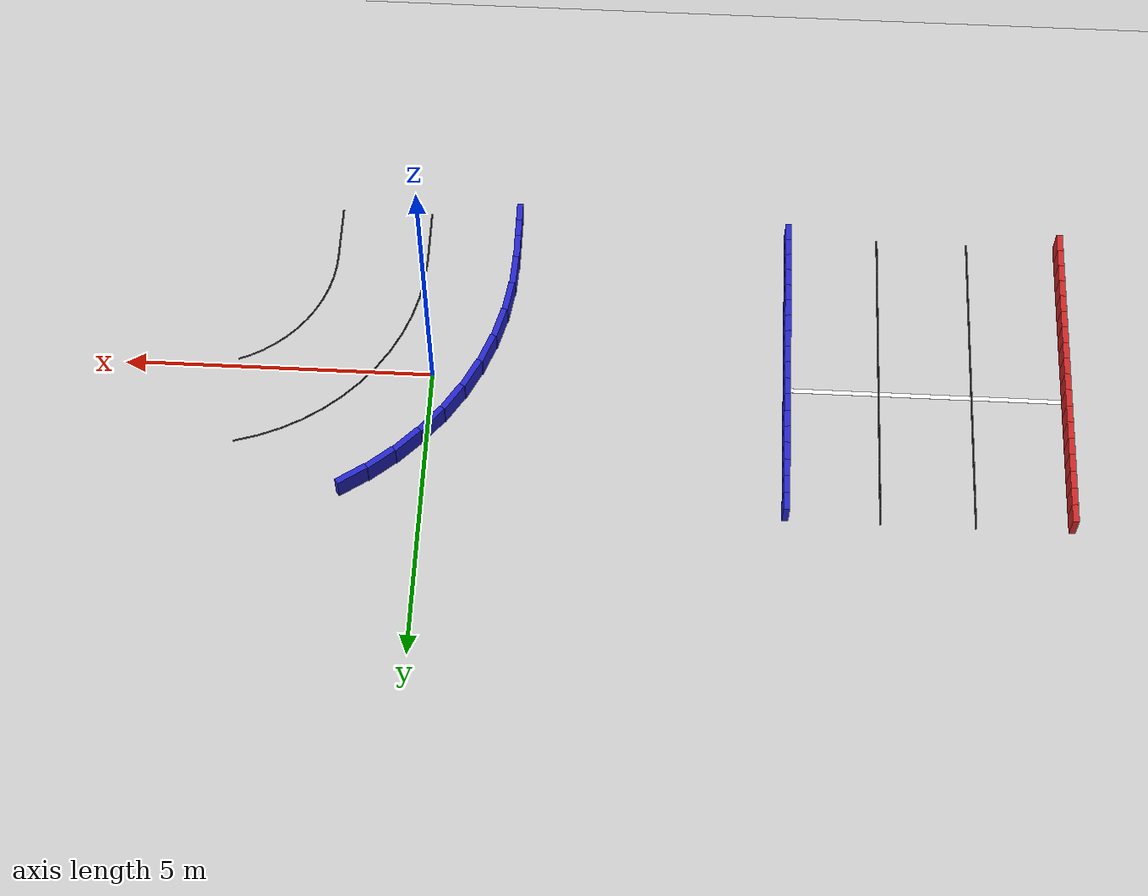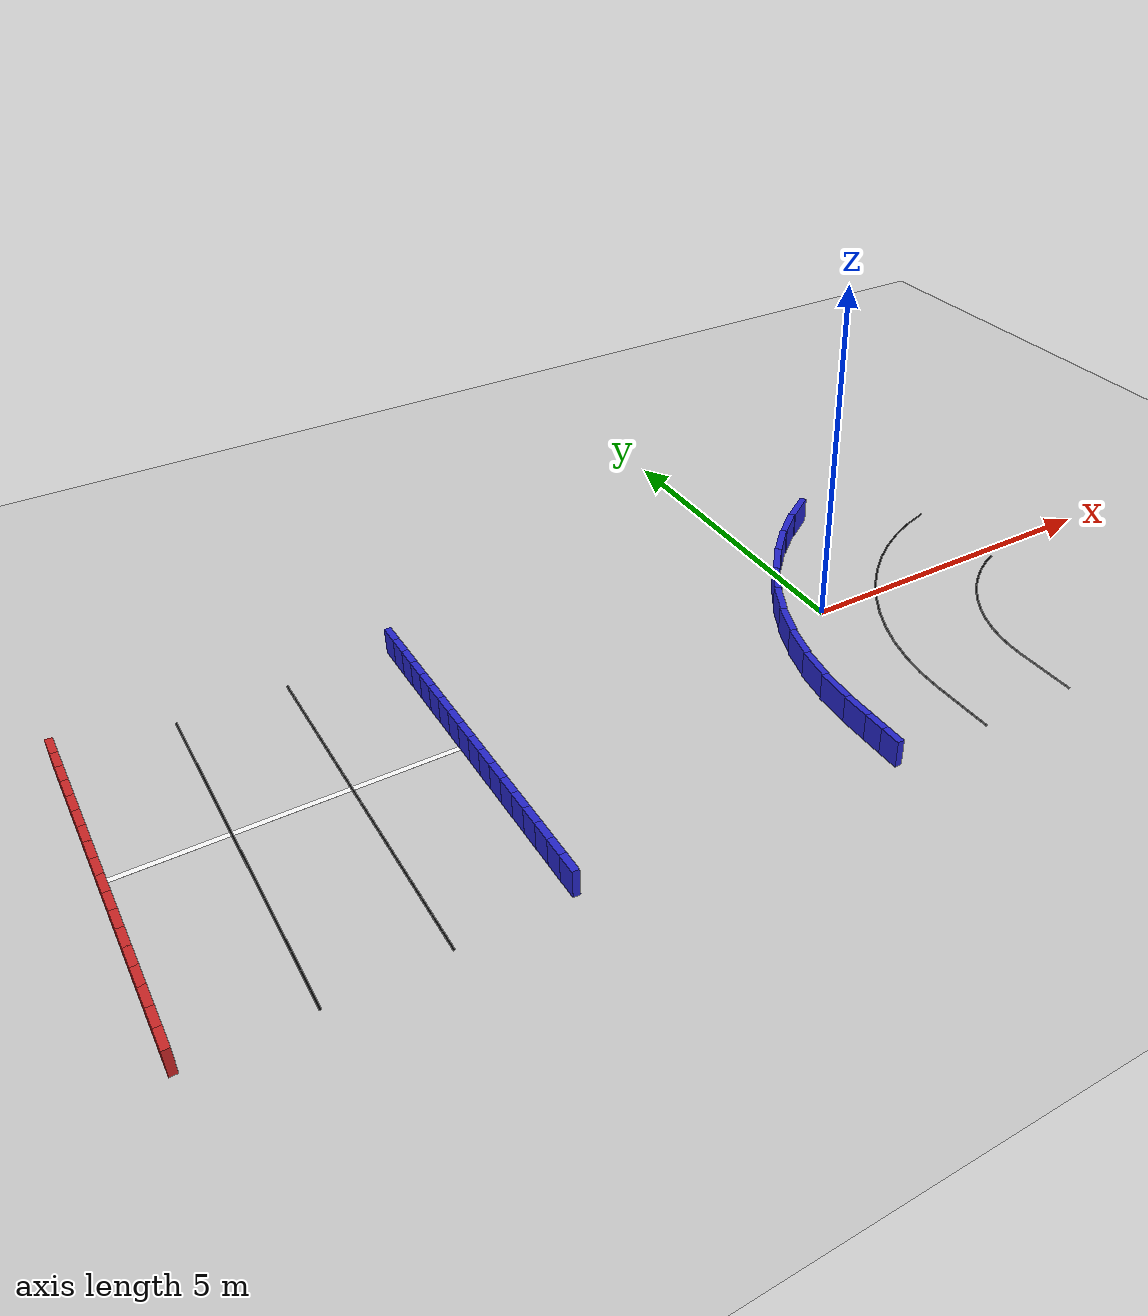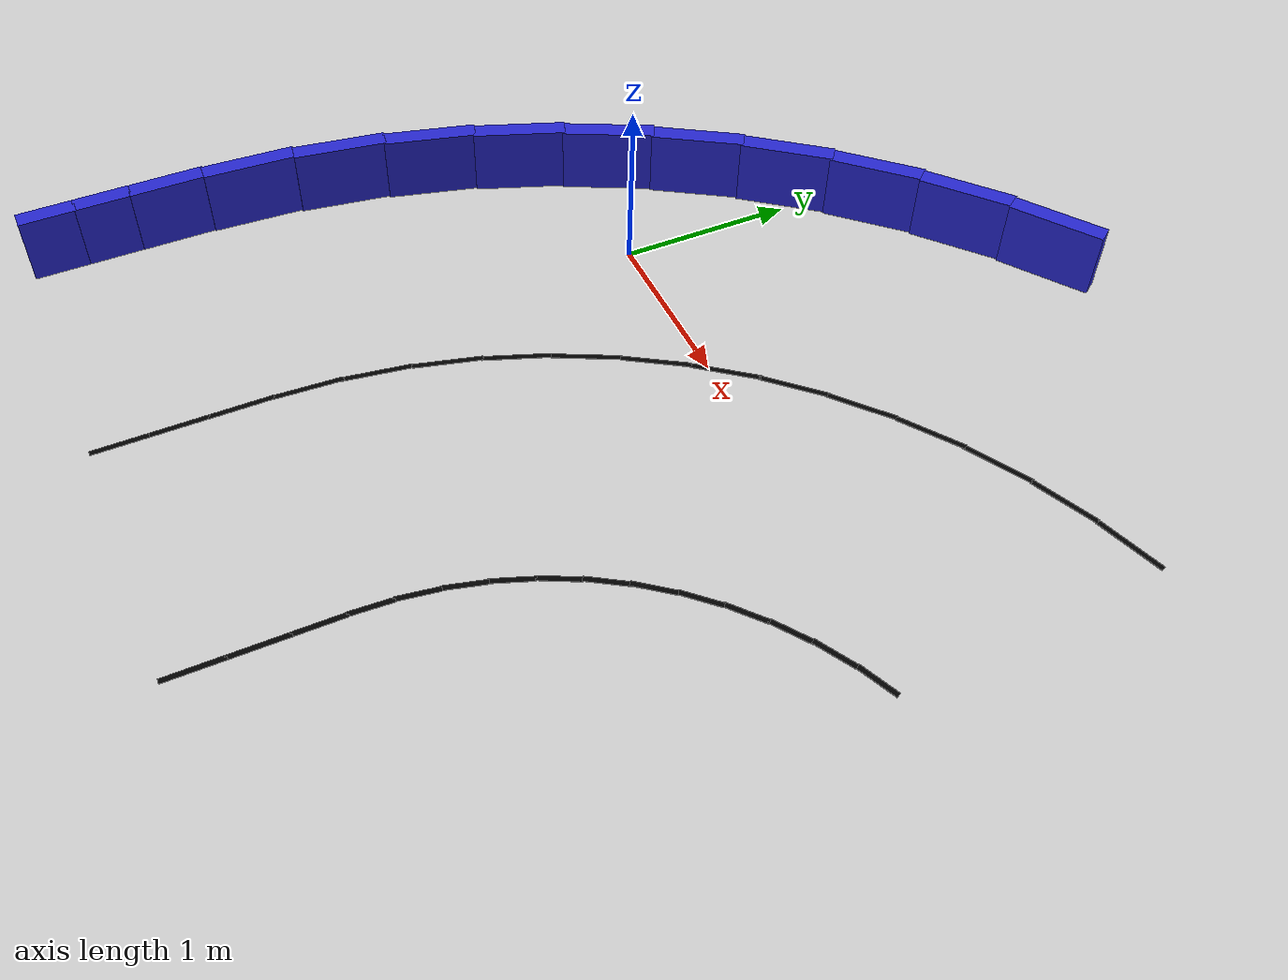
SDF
<sdf version="1.6">
 <world name="3lane_track">
  <include><uri>model://ground_plane</uri></include>
  <include><uri>model://sun</uri></include>
  <model name="iw_0">
   <static>true</static>
   <pose>-5.7500 -0.1500 0.200 0 0 -1.5708</pose>
   <link name="l">
    <collision name="c"><geometry><box><size>0.3100 0.1 0.4</size></box></geometry></collision>
    <visual name="v">
     <geometry><box><size>0.3100 0.1 0.4</size></box></geometry>
     <material><ambient>0.15 0.15 0.8 1</ambient><diffuse>0.15 0.15 0.8 1</diffuse></material>
    </visual>
   </link>
  </model>
  <model name="iw_1">
   <static>true</static>
   <pose>-5.7500 -0.4500 0.200 0 0 -1.5708</pose>
   <link name="l">
    <collision name="c"><geometry><box><size>0.3100 0.1 0.4</size></box></geometry></collision>
    <visual name="v">
     <geometry><box><size>0.3100 0.1 0.4</size></box></geometry>
     <material><ambient>0.15 0.15 0.8 1</ambient><diffuse>0.15 0.15 0.8 1</diffuse></material>
    </visual>
   </link>
  </model>
  <model name="iw_2">
   <static>true</static>
   <pose>-5.7500 -0.7500 0.200 0 0 -1.5708</pose>
   <link name="l">
    <collision name="c"><geometry><box><size>0.3100 0.1 0.4</size></box></geometry></collision>
    <visual name="v">
     <geometry><box><size>0.3100 0.1 0.4</size></box></geometry>
     <material><ambient>0.15 0.15 0.8 1</ambient><diffuse>0.15 0.15 0.8 1</diffuse></material>
    </visual>
   </link>
  </model>
  <model name="iw_3">
   <static>true</static>
   <pose>-5.7500 -1.0500 0.200 0 0 -1.5708</pose>
   <link name="l">
    <collision name="c"><geometry><box><size>0.3100 0.1 0.4</size></box></geometry></collision>
    <visual name="v">
     <geometry><box><size>0.3100 0.1 0.4</size></box></geometry>
     <material><ambient>0.15 0.15 0.8 1</ambient><diffuse>0.15 0.15 0.8 1</diffuse></material>
    </visual>
   </link>
  </model>
  <model name="iw_4">
   <static>true</static>
   <pose>-5.7500 -1.3500 0.200 0 0 -1.5708</pose>
   <link name="l">
    <collision name="c"><geometry><box><size>0.3100 0.1 0.4</size></box></geometry></collision>
    <visual name="v">
     <geometry><box><size>0.3100 0.1 0.4</size></box></geometry>
     <material><ambient>0.15 0.15 0.8 1</ambient><diffuse>0.15 0.15 0.8 1</diffuse></material>
    </visual>
   </link>
  </model>
  <model name="iw_5">
   <static>true</static>
   <pose>-5.7500 -1.6500 0.200 0 0 -1.5708</pose>
   <link name="l">
    <collision name="c"><geometry><box><size>0.3100 0.1 0.4</size></box></geometry></collision>
    <visual name="v">
     <geometry><box><size>0.3100 0.1 0.4</size></box></geometry>
     <material><ambient>0.15 0.15 0.8 1</ambient><diffuse>0.15 0.15 0.8 1</diffuse></material>
    </visual>
   </link>
  </model>
  <model name="iw_6">
   <static>true</static>
   <pose>-5.7500 -1.9500 0.200 0 0 -1.5708</pose>
   <link name="l">
    <collision name="c"><geometry><box><size>0.3100 0.1 0.4</size></box></geometry></collision>
    <visual name="v">
     <geometry><box><size>0.3100 0.1 0.4</size></box></geometry>
     <material><ambient>0.15 0.15 0.8 1</ambient><diffuse>0.15 0.15 0.8 1</diffuse></material>
    </visual>
   </link>
  </model>
  <model name="iw_7">
   <static>true</static>
   <pose>-5.7500 -2.2500 0.200 0 0 -1.5708</pose>
   <link name="l">
    <collision name="c"><geometry><box><size>0.3100 0.1 0.4</size></box></geometry></collision>
    <visual name="v">
     <geometry><box><size>0.3100 0.1 0.4</size></box></geometry>
     <material><ambient>0.15 0.15 0.8 1</ambient><diffuse>0.15 0.15 0.8 1</diffuse></material>
    </visual>
   </link>
  </model>
  <model name="iw_8">
   <static>true</static>
   <pose>-5.7500 -2.5500 0.200 0 0 -1.5708</pose>
   <link name="l">
    <collision name="c"><geometry><box><size>0.3100 0.1 0.4</size></box></geometry></collision>
    <visual name="v">
     <geometry><box><size>0.3100 0.1 0.4</size></box></geometry>
     <material><ambient>0.15 0.15 0.8 1</ambient><diffuse>0.15 0.15 0.8 1</diffuse></material>
    </visual>
   </link>
  </model>
  <model name="iw_9">
   <static>true</static>
   <pose>-5.7500 -2.8500 0.200 0 0 -1.5708</pose>
   <link name="l">
    <collision name="c"><geometry><box><size>0.3100 0.1 0.4</size></box></geometry></collision>
    <visual name="v">
     <geometry><box><size>0.3100 0.1 0.4</size></box></geometry>
     <material><ambient>0.15 0.15 0.8 1</ambient><diffuse>0.15 0.15 0.8 1</diffuse></material>
    </visual>
   </link>
  </model>
  <model name="iw_71">
   <static>true</static>
   <pose>-1.2500 -3.0312 0.200 0 0 1.5708</pose>
   <link name="l">
    <collision name="c"><geometry><box><size>0.3225 0.1 0.4</size></box></geometry></collision>
    <visual name="v">
     <geometry><box><size>0.3225 0.1 0.4</size></box></geometry>
     <material><ambient>0.15 0.15 0.8 1</ambient><diffuse>0.15 0.15 0.8 1</diffuse></material>
    </visual>
   </link>
  </model>
  <model name="iw_72">
   <static>true</static>
   <pose>-1.2500 -2.7187 0.200 0 0 1.5708</pose>
   <link name="l">
    <collision name="c"><geometry><box><size>0.3225 0.1 0.4</size></box></geometry></collision>
    <visual name="v">
     <geometry><box><size>0.3225 0.1 0.4</size></box></geometry>
     <material><ambient>0.15 0.15 0.8 1</ambient><diffuse>0.15 0.15 0.8 1</diffuse></material>
    </visual>
   </link>
  </model>
  <model name="iw_73">
   <static>true</static>
   <pose>-1.2486 -2.3493 0.200 0 0 1.5708</pose>
   <link name="l">
    <collision name="c"><geometry><box><size>0.4365 0.1 0.4</size></box></geometry></collision>
    <visual name="v">
     <geometry><box><size>0.4365 0.1 0.4</size></box></geometry>
     <material><ambient>0.15 0.15 0.8 1</ambient><diffuse>0.15 0.15 0.8 1</diffuse></material>
    </visual>
   </link>
  </model>
  <model name="iw_74">
   <static>true</static>
   <pose>-1.2279 -1.8709 0.200 0 0 1.5201</pose>
   <link name="l">
    <collision name="c"><geometry><box><size>0.5416 0.1 0.4</size></box></geometry></collision>
    <visual name="v">
     <geometry><box><size>0.5416 0.1 0.4</size></box></geometry>
     <material><ambient>0.15 0.15 0.8 1</ambient><diffuse>0.15 0.15 0.8 1</diffuse></material>
    </visual>
   </link>
  </model>
  <model name="iw_75">
   <static>true</static>
   <pose>-1.1627 -1.3440 0.200 0 0 1.4188</pose>
   <link name="l">
    <collision name="c"><geometry><box><size>0.5416 0.1 0.4</size></box></geometry></collision>
    <visual name="v">
     <geometry><box><size>0.5416 0.1 0.4</size></box></geometry>
     <material><ambient>0.15 0.15 0.8 1</ambient><diffuse>0.15 0.15 0.8 1</diffuse></material>
    </visual>
   </link>
  </model>
  <model name="iw_76">
   <static>true</static>
   <pose>-1.0446 -0.8263 0.200 0 0 1.3174</pose>
   <link name="l">
    <collision name="c"><geometry><box><size>0.5416 0.1 0.4</size></box></geometry></collision>
    <visual name="v">
     <geometry><box><size>0.5416 0.1 0.4</size></box></geometry>
     <material><ambient>0.15 0.15 0.8 1</ambient><diffuse>0.15 0.15 0.8 1</diffuse></material>
    </visual>
   </link>
  </model>
  <model name="iw_77">
   <static>true</static>
   <pose>-0.8746 -0.3233 0.200 0 0 1.2161</pose>
   <link name="l">
    <collision name="c"><geometry><box><size>0.5416 0.1 0.4</size></box></geometry></collision>
    <visual name="v">
     <geometry><box><size>0.5416 0.1 0.4</size></box></geometry>
     <material><ambient>0.15 0.15 0.8 1</ambient><diffuse>0.15 0.15 0.8 1</diffuse></material>
    </visual>
   </link>
  </model>
  <model name="iw_78">
   <static>true</static>
   <pose>-0.6547 0.1600 0.200 0 0 1.1148</pose>
   <link name="l">
    <collision name="c"><geometry><box><size>0.5416 0.1 0.4</size></box></geometry></collision>
    <visual name="v">
     <geometry><box><size>0.5416 0.1 0.4</size></box></geometry>
     <material><ambient>0.15 0.15 0.8 1</ambient><diffuse>0.15 0.15 0.8 1</diffuse></material>
    </visual>
   </link>
  </model>
  <model name="iw_79">
   <static>true</static>
   <pose>-0.3870 0.6186 0.200 0 0 1.0134</pose>
   <link name="l">
    <collision name="c"><geometry><box><size>0.5416 0.1 0.4</size></box></geometry></collision>
    <visual name="v">
     <geometry><box><size>0.5416 0.1 0.4</size></box></geometry>
     <material><ambient>0.15 0.15 0.8 1</ambient><diffuse>0.15 0.15 0.8 1</diffuse></material>
    </visual>
   </link>
  </model>
  <model name="iw_80">
   <static>true</static>
   <pose>-0.0743 1.0477 0.200 0 0 0.9121</pose>
   <link name="l">
    <collision name="c"><geometry><box><size>0.5416 0.1 0.4</size></box></geometry></collision>
    <visual name="v">
     <geometry><box><size>0.5416 0.1 0.4</size></box></geometry>
     <material><ambient>0.15 0.15 0.8 1</ambient><diffuse>0.15 0.15 0.8 1</diffuse></material>
    </visual>
   </link>
  </model>
  <model name="iw_81">
   <static>true</static>
   <pose>0.2802 1.4429 0.200 0 0 0.8107</pose>
   <link name="l">
    <collision name="c"><geometry><box><size>0.5416 0.1 0.4</size></box></geometry></collision>
    <visual name="v">
     <geometry><box><size>0.5416 0.1 0.4</size></box></geometry>
     <material><ambient>0.15 0.15 0.8 1</ambient><diffuse>0.15 0.15 0.8 1</diffuse></material>
    </visual>
   </link>
  </model>
  <model name="iw_82">
   <static>true</static>
   <pose>0.6729 1.8003 0.200 0 0 0.7094</pose>
   <link name="l">
    <collision name="c"><geometry><box><size>0.5416 0.1 0.4</size></box></geometry></collision>
    <visual name="v">
     <geometry><box><size>0.5416 0.1 0.4</size></box></geometry>
     <material><ambient>0.15 0.15 0.8 1</ambient><diffuse>0.15 0.15 0.8 1</diffuse></material>
    </visual>
   </link>
  </model>
  <model name="iw_83">
   <static>true</static>
   <pose>1.0998 2.1161 0.200 0 0 0.6081</pose>
   <link name="l">
    <collision name="c"><geometry><box><size>0.5416 0.1 0.4</size></box></geometry></collision>
    <visual name="v">
     <geometry><box><size>0.5416 0.1 0.4</size></box></geometry>
     <material><ambient>0.15 0.15 0.8 1</ambient><diffuse>0.15 0.15 0.8 1</diffuse></material>
    </visual>
   </link>
  </model>
  <model name="iw_308">
   <static>true</static>
   <pose>-5.7500 2.2500 0.200 0 0 -1.5708</pose>
   <link name="l">
    <collision name="c"><geometry><box><size>0.3100 0.1 0.4</size></box></geometry></collision>
    <visual name="v">
     <geometry><box><size>0.3100 0.1 0.4</size></box></geometry>
     <material><ambient>0.15 0.15 0.8 1</ambient><diffuse>0.15 0.15 0.8 1</diffuse></material>
    </visual>
   </link>
  </model>
  <model name="iw_309">
   <static>true</static>
   <pose>-5.7500 1.9500 0.200 0 0 -1.5708</pose>
   <link name="l">
    <collision name="c"><geometry><box><size>0.3100 0.1 0.4</size></box></geometry></collision>
    <visual name="v">
     <geometry><box><size>0.3100 0.1 0.4</size></box></geometry>
     <material><ambient>0.15 0.15 0.8 1</ambient><diffuse>0.15 0.15 0.8 1</diffuse></material>
    </visual>
   </link>
  </model>
  <model name="iw_310">
   <static>true</static>
   <pose>-5.7500 1.6500 0.200 0 0 -1.5708</pose>
   <link name="l">
    <collision name="c"><geometry><box><size>0.3100 0.1 0.4</size></box></geometry></collision>
    <visual name="v">
     <geometry><box><size>0.3100 0.1 0.4</size></box></geometry>
     <material><ambient>0.15 0.15 0.8 1</ambient><diffuse>0.15 0.15 0.8 1</diffuse></material>
    </visual>
   </link>
  </model>
  <model name="iw_311">
   <static>true</static>
   <pose>-5.7500 1.3500 0.200 0 0 -1.5708</pose>
   <link name="l">
    <collision name="c"><geometry><box><size>0.3100 0.1 0.4</size></box></geometry></collision>
    <visual name="v">
     <geometry><box><size>0.3100 0.1 0.4</size></box></geometry>
     <material><ambient>0.15 0.15 0.8 1</ambient><diffuse>0.15 0.15 0.8 1</diffuse></material>
    </visual>
   </link>
  </model>
  <model name="iw_312">
   <static>true</static>
   <pose>-5.7500 1.0500 0.200 0 0 -1.5708</pose>
   <link name="l">
    <collision name="c"><geometry><box><size>0.3100 0.1 0.4</size></box></geometry></collision>
    <visual name="v">
     <geometry><box><size>0.3100 0.1 0.4</size></box></geometry>
     <material><ambient>0.15 0.15 0.8 1</ambient><diffuse>0.15 0.15 0.8 1</diffuse></material>
    </visual>
   </link>
  </model>
  <model name="iw_313">
   <static>true</static>
   <pose>-5.7500 0.7500 0.200 0 0 -1.5708</pose>
   <link name="l">
    <collision name="c"><geometry><box><size>0.3100 0.1 0.4</size></box></geometry></collision>
    <visual name="v">
     <geometry><box><size>0.3100 0.1 0.4</size></box></geometry>
     <material><ambient>0.15 0.15 0.8 1</ambient><diffuse>0.15 0.15 0.8 1</diffuse></material>
    </visual>
   </link>
  </model>
  <model name="iw_314">
   <static>true</static>
   <pose>-5.7500 0.4500 0.200 0 0 -1.5708</pose>
   <link name="l">
    <collision name="c"><geometry><box><size>0.3100 0.1 0.4</size></box></geometry></collision>
    <visual name="v">
     <geometry><box><size>0.3100 0.1 0.4</size></box></geometry>
     <material><ambient>0.15 0.15 0.8 1</ambient><diffuse>0.15 0.15 0.8 1</diffuse></material>
    </visual>
   </link>
  </model>
  <model name="iw_315">
   <static>true</static>
   <pose>-5.7500 0.1500 0.200 0 0 -1.5708</pose>
   <link name="l">
    <collision name="c"><geometry><box><size>0.3100 0.1 0.4</size></box></geometry></collision>
    <visual name="v">
     <geometry><box><size>0.3100 0.1 0.4</size></box></geometry>
     <material><ambient>0.15 0.15 0.8 1</ambient><diffuse>0.15 0.15 0.8 1</diffuse></material>
    </visual>
   </link>
  </model>
  <model name="ow_0">
   <static>true</static>
   <pose>-10.2500 -0.1500 0.200 0 0 -1.5708</pose>
   <link name="l">
    <collision name="c"><geometry><box><size>0.3100 0.1 0.4</size></box></geometry></collision>
    <visual name="v">
     <geometry><box><size>0.3100 0.1 0.4</size></box></geometry>
     <material><ambient>0.8 0.15 0.15 1</ambient><diffuse>0.8 0.15 0.15 1</diffuse></material>
    </visual>
   </link>
  </model>
  <model name="ow_1">
   <static>true</static>
   <pose>-10.2500 -0.4500 0.200 0 0 -1.5708</pose>
   <link name="l">
    <collision name="c"><geometry><box><size>0.3100 0.1 0.4</size></box></geometry></collision>
    <visual name="v">
     <geometry><box><size>0.3100 0.1 0.4</size></box></geometry>
     <material><ambient>0.8 0.15 0.15 1</ambient><diffuse>0.8 0.15 0.15 1</diffuse></material>
    </visual>
   </link>
  </model>
  <model name="ow_2">
   <static>true</static>
   <pose>-10.2500 -0.7500 0.200 0 0 -1.5708</pose>
   <link name="l">
    <collision name="c"><geometry><box><size>0.3100 0.1 0.4</size></box></geometry></collision>
    <visual name="v">
     <geometry><box><size>0.3100 0.1 0.4</size></box></geometry>
     <material><ambient>0.8 0.15 0.15 1</ambient><diffuse>0.8 0.15 0.15 1</diffuse></material>
    </visual>
   </link>
  </model>
  <model name="ow_3">
   <static>true</static>
   <pose>-10.2500 -1.0500 0.200 0 0 -1.5708</pose>
   <link name="l">
    <collision name="c"><geometry><box><size>0.3100 0.1 0.4</size></box></geometry></collision>
    <visual name="v">
     <geometry><box><size>0.3100 0.1 0.4</size></box></geometry>
     <material><ambient>0.8 0.15 0.15 1</ambient><diffuse>0.8 0.15 0.15 1</diffuse></material>
    </visual>
   </link>
  </model>
  <model name="ow_4">
   <static>true</static>
   <pose>-10.2500 -1.3500 0.200 0 0 -1.5708</pose>
   <link name="l">
    <collision name="c"><geometry><box><size>0.3100 0.1 0.4</size></box></geometry></collision>
    <visual name="v">
     <geometry><box><size>0.3100 0.1 0.4</size></box></geometry>
     <material><ambient>0.8 0.15 0.15 1</ambient><diffuse>0.8 0.15 0.15 1</diffuse></material>
    </visual>
   </link>
  </model>
  <model name="ow_5">
   <static>true</static>
   <pose>-10.2500 -1.6500 0.200 0 0 -1.5708</pose>
   <link name="l">
    <collision name="c"><geometry><box><size>0.3100 0.1 0.4</size></box></geometry></collision>
    <visual name="v">
     <geometry><box><size>0.3100 0.1 0.4</size></box></geometry>
     <material><ambient>0.8 0.15 0.15 1</ambient><diffuse>0.8 0.15 0.15 1</diffuse></material>
    </visual>
   </link>
  </model>
  <model name="ow_6">
   <static>true</static>
   <pose>-10.2500 -1.9500 0.200 0 0 -1.5708</pose>
   <link name="l">
    <collision name="c"><geometry><box><size>0.3100 0.1 0.4</size></box></geometry></collision>
    <visual name="v">
     <geometry><box><size>0.3100 0.1 0.4</size></box></geometry>
     <material><ambient>0.8 0.15 0.15 1</ambient><diffuse>0.8 0.15 0.15 1</diffuse></material>
    </visual>
   </link>
  </model>
  <model name="ow_7">
   <static>true</static>
   <pose>-10.2500 -2.2500 0.200 0 0 -1.5708</pose>
   <link name="l">
    <collision name="c"><geometry><box><size>0.3100 0.1 0.4</size></box></geometry></collision>
    <visual name="v">
     <geometry><box><size>0.3100 0.1 0.4</size></box></geometry>
     <material><ambient>0.8 0.15 0.15 1</ambient><diffuse>0.8 0.15 0.15 1</diffuse></material>
    </visual>
   </link>
  </model>
  <model name="ow_8">
   <static>true</static>
   <pose>-10.2500 -2.5500 0.200 0 0 -1.5708</pose>
   <link name="l">
    <collision name="c"><geometry><box><size>0.3100 0.1 0.4</size></box></geometry></collision>
    <visual name="v">
     <geometry><box><size>0.3100 0.1 0.4</size></box></geometry>
     <material><ambient>0.8 0.15 0.15 1</ambient><diffuse>0.8 0.15 0.15 1</diffuse></material>
    </visual>
   </link>
  </model>
  <model name="ow_9">
   <static>true</static>
   <pose>-10.2500 -2.8500 0.200 0 0 -1.5708</pose>
   <link name="l">
    <collision name="c"><geometry><box><size>0.3100 0.1 0.4</size></box></geometry></collision>
    <visual name="v">
     <geometry><box><size>0.3100 0.1 0.4</size></box></geometry>
     <material><ambient>0.8 0.15 0.15 1</ambient><diffuse>0.8 0.15 0.15 1</diffuse></material>
    </visual>
   </link>
  </model>
  <model name="ow_308">
   <static>true</static>
   <pose>-10.2500 2.2500 0.200 0 0 -1.5708</pose>
   <link name="l">
    <collision name="c"><geometry><box><size>0.3100 0.1 0.4</size></box></geometry></collision>
    <visual name="v">
     <geometry><box><size>0.3100 0.1 0.4</size></box></geometry>
     <material><ambient>0.8 0.15 0.15 1</ambient><diffuse>0.8 0.15 0.15 1</diffuse></material>
    </visual>
   </link>
  </model>
  <model name="ow_309">
   <static>true</static>
   <pose>-10.2500 1.9500 0.200 0 0 -1.5708</pose>
   <link name="l">
    <collision name="c"><geometry><box><size>0.3100 0.1 0.4</size></box></geometry></collision>
    <visual name="v">
     <geometry><box><size>0.3100 0.1 0.4</size></box></geometry>
     <material><ambient>0.8 0.15 0.15 1</ambient><diffuse>0.8 0.15 0.15 1</diffuse></material>
    </visual>
   </link>
  </model>
  <model name="ow_310">
   <static>true</static>
   <pose>-10.2500 1.6500 0.200 0 0 -1.5708</pose>
   <link name="l">
    <collision name="c"><geometry><box><size>0.3100 0.1 0.4</size></box></geometry></collision>
    <visual name="v">
     <geometry><box><size>0.3100 0.1 0.4</size></box></geometry>
     <material><ambient>0.8 0.15 0.15 1</ambient><diffuse>0.8 0.15 0.15 1</diffuse></material>
    </visual>
   </link>
  </model>
  <model name="ow_311">
   <static>true</static>
   <pose>-10.2500 1.3500 0.200 0 0 -1.5708</pose>
   <link name="l">
    <collision name="c"><geometry><box><size>0.3100 0.1 0.4</size></box></geometry></collision>
    <visual name="v">
     <geometry><box><size>0.3100 0.1 0.4</size></box></geometry>
     <material><ambient>0.8 0.15 0.15 1</ambient><diffuse>0.8 0.15 0.15 1</diffuse></material>
    </visual>
   </link>
  </model>
  <model name="ow_312">
   <static>true</static>
   <pose>-10.2500 1.0500 0.200 0 0 -1.5708</pose>
   <link name="l">
    <collision name="c"><geometry><box><size>0.3100 0.1 0.4</size></box></geometry></collision>
    <visual name="v">
     <geometry><box><size>0.3100 0.1 0.4</size></box></geometry>
     <material><ambient>0.8 0.15 0.15 1</ambient><diffuse>0.8 0.15 0.15 1</diffuse></material>
    </visual>
   </link>
  </model>
  <model name="ow_313">
   <static>true</static>
   <pose>-10.2500 0.7500 0.200 0 0 -1.5708</pose>
   <link name="l">
    <collision name="c"><geometry><box><size>0.3100 0.1 0.4</size></box></geometry></collision>
    <visual name="v">
     <geometry><box><size>0.3100 0.1 0.4</size></box></geometry>
     <material><ambient>0.8 0.15 0.15 1</ambient><diffuse>0.8 0.15 0.15 1</diffuse></material>
    </visual>
   </link>
  </model>
  <model name="ow_314">
   <static>true</static>
   <pose>-10.2500 0.4500 0.200 0 0 -1.5708</pose>
   <link name="l">
    <collision name="c"><geometry><box><size>0.3100 0.1 0.4</size></box></geometry></collision>
    <visual name="v">
     <geometry><box><size>0.3100 0.1 0.4</size></box></geometry>
     <material><ambient>0.8 0.15 0.15 1</ambient><diffuse>0.8 0.15 0.15 1</diffuse></material>
    </visual>
   </link>
  </model>
  <model name="ow_315">
   <static>true</static>
   <pose>-10.2500 0.1500 0.200 0 0 -1.5708</pose>
   <link name="l">
    <collision name="c"><geometry><box><size>0.3100 0.1 0.4</size></box></geometry></collision>
    <visual name="v">
     <geometry><box><size>0.3100 0.1 0.4</size></box></geometry>
     <material><ambient>0.8 0.15 0.15 1</ambient><diffuse>0.8 0.15 0.15 1</diffuse></material>
    </visual>
   </link>
  </model>
  <model name="line_0">
   <static>true</static>
   <pose>-7.2500 -0.1500 0.002 0 0 -1.5708</pose>
   <link name="l">
    <visual name="v">
     <geometry><box><size>0.3100 0.03 0.002</size></box></geometry>
     <material><ambient>0 0 0 1</ambient><diffuse>0 0 0 1</diffuse></material>
    </visual>
   </link>
  </model>
  <model name="line_1">
   <static>true</static>
   <pose>-8.7500 -0.1500 0.002 0 0 -1.5708</pose>
   <link name="l">
    <visual name="v">
     <geometry><box><size>0.3100 0.03 0.002</size></box></geometry>
     <material><ambient>0 0 0 1</ambient><diffuse>0 0 0 1</diffuse></material>
    </visual>
   </link>
  </model>
  <model name="line_2">
   <static>true</static>
   <pose>-7.2500 -0.4500 0.002 0 0 -1.5708</pose>
   <link name="l">
    <visual name="v">
     <geometry><box><size>0.3100 0.03 0.002</size></box></geometry>
     <material><ambient>0 0 0 1</ambient><diffuse>0 0 0 1</diffuse></material>
    </visual>
   </link>
  </model>
  <model name="line_3">
   <static>true</static>
   <pose>-8.7500 -0.4500 0.002 0 0 -1.5708</pose>
   <link name="l">
    <visual name="v">
     <geometry><box><size>0.3100 0.03 0.002</size></box></geometry>
     <material><ambient>0 0 0 1</ambient><diffuse>0 0 0 1</diffuse></material>
    </visual>
   </link>
  </model>
  <model name="line_4">
   <static>true</static>
   <pose>-7.2500 -0.7500 0.002 0 0 -1.5708</pose>
   <link name="l">
    <visual name="v">
     <geometry><box><size>0.3100 0.03 0.002</size></box></geometry>
     <material><ambient>0 0 0 1</ambient><diffuse>0 0 0 1</diffuse></material>
    </visual>
   </link>
  </model>
  <model name="line_5">
   <static>true</static>
   <pose>-8.7500 -0.7500 0.002 0 0 -1.5708</pose>
   <link name="l">
    <visual name="v">
     <geometry><box><size>0.3100 0.03 0.002</size></box></geometry>
     <material><ambient>0 0 0 1</ambient><diffuse>0 0 0 1</diffuse></material>
    </visual>
   </link>
  </model>
  <model name="line_6">
   <static>true</static>
   <pose>-7.2500 -1.0500 0.002 0 0 -1.5708</pose>
   <link name="l">
    <visual name="v">
     <geometry><box><size>0.3100 0.03 0.002</size></box></geometry>
     <material><ambient>0 0 0 1</ambient><diffuse>0 0 0 1</diffuse></material>
    </visual>
   </link>
  </model>
  <model name="line_7">
   <static>true</static>
   <pose>-8.7500 -1.0500 0.002 0 0 -1.5708</pose>
   <link name="l">
    <visual name="v">
     <geometry><box><size>0.3100 0.03 0.002</size></box></geometry>
     <material><ambient>0 0 0 1</ambient><diffuse>0 0 0 1</diffuse></material>
    </visual>
   </link>
  </model>
  <model name="line_8">
   <static>true</static>
   <pose>-7.2500 -1.3500 0.002 0 0 -1.5708</pose>
   <link name="l">
    <visual name="v">
     <geometry><box><size>0.3100 0.03 0.002</size></box></geometry>
     <material><ambient>0 0 0 1</ambient><diffuse>0 0 0 1</diffuse></material>
    </visual>
   </link>
  </model>
  <model name="line_9">
   <static>true</static>
   <pose>-8.7500 -1.3500 0.002 0 0 -1.5708</pose>
   <link name="l">
    <visual name="v">
     <geometry><box><size>0.3100 0.03 0.002</size></box></geometry>
     <material><ambient>0 0 0 1</ambient><diffuse>0 0 0 1</diffuse></material>
    </visual>
   </link>
  </model>
  <model name="line_10">
   <static>true</static>
   <pose>-7.2500 -1.6500 0.002 0 0 -1.5708</pose>
   <link name="l">
    <visual name="v">
     <geometry><box><size>0.3100 0.03 0.002</size></box></geometry>
     <material><ambient>0 0 0 1</ambient><diffuse>0 0 0 1</diffuse></material>
    </visual>
   </link>
  </model>
  <model name="line_11">
   <static>true</static>
   <pose>-8.7500 -1.6500 0.002 0 0 -1.5708</pose>
   <link name="l">
    <visual name="v">
     <geometry><box><size>0.3100 0.03 0.002</size></box></geometry>
     <material><ambient>0 0 0 1</ambient><diffuse>0 0 0 1</diffuse></material>
    </visual>
   </link>
  </model>
  <model name="line_12">
   <static>true</static>
   <pose>-7.2500 -1.9500 0.002 0 0 -1.5708</pose>
   <link name="l">
    <visual name="v">
     <geometry><box><size>0.3100 0.03 0.002</size></box></geometry>
     <material><ambient>0 0 0 1</ambient><diffuse>0 0 0 1</diffuse></material>
    </visual>
   </link>
  </model>
  <model name="line_13">
   <static>true</static>
   <pose>-8.7500 -1.9500 0.002 0 0 -1.5708</pose>
   <link name="l">
    <visual name="v">
     <geometry><box><size>0.3100 0.03 0.002</size></box></geometry>
     <material><ambient>0 0 0 1</ambient><diffuse>0 0 0 1</diffuse></material>
    </visual>
   </link>
  </model>
  <model name="line_14">
   <static>true</static>
   <pose>-7.2500 -2.2500 0.002 0 0 -1.5708</pose>
   <link name="l">
    <visual name="v">
     <geometry><box><size>0.3100 0.03 0.002</size></box></geometry>
     <material><ambient>0 0 0 1</ambient><diffuse>0 0 0 1</diffuse></material>
    </visual>
   </link>
  </model>
  <model name="line_15">
   <static>true</static>
   <pose>-8.7500 -2.2500 0.002 0 0 -1.5708</pose>
   <link name="l">
    <visual name="v">
     <geometry><box><size>0.3100 0.03 0.002</size></box></geometry>
     <material><ambient>0 0 0 1</ambient><diffuse>0 0 0 1</diffuse></material>
    </visual>
   </link>
  </model>
  <model name="line_16">
   <static>true</static>
   <pose>-7.2500 -2.5500 0.002 0 0 -1.5708</pose>
   <link name="l">
    <visual name="v">
     <geometry><box><size>0.3100 0.03 0.002</size></box></geometry>
     <material><ambient>0 0 0 1</ambient><diffuse>0 0 0 1</diffuse></material>
    </visual>
   </link>
  </model>
  <model name="line_17">
   <static>true</static>
   <pose>-8.7500 -2.5500 0.002 0 0 -1.5708</pose>
   <link name="l">
    <visual name="v">
     <geometry><box><size>0.3100 0.03 0.002</size></box></geometry>
     <material><ambient>0 0 0 1</ambient><diffuse>0 0 0 1</diffuse></material>
    </visual>
   </link>
  </model>
  <model name="line_18">
   <static>true</static>
   <pose>-7.2500 -2.8500 0.002 0 0 -1.5708</pose>
   <link name="l">
    <visual name="v">
     <geometry><box><size>0.3100 0.03 0.002</size></box></geometry>
     <material><ambient>0 0 0 1</ambient><diffuse>0 0 0 1</diffuse></material>
    </visual>
   </link>
  </model>
  <model name="line_19">
   <static>true</static>
   <pose>-8.7500 -2.8500 0.002 0 0 -1.5708</pose>
   <link name="l">
    <visual name="v">
     <geometry><box><size>0.3100 0.03 0.002</size></box></geometry>
     <material><ambient>0 0 0 1</ambient><diffuse>0 0 0 1</diffuse></material>
    </visual>
   </link>
  </model>
  <model name="line_142">
   <static>true</static>
   <pose>0.2500 -3.0312 0.002 0 0 1.5708</pose>
   <link name="l">
    <visual name="v">
     <geometry><box><size>0.3225 0.03 0.002</size></box></geometry>
     <material><ambient>0 0 0 1</ambient><diffuse>0 0 0 1</diffuse></material>
    </visual>
   </link>
  </model>
  <model name="line_143">
   <static>true</static>
   <pose>1.7500 -3.0312 0.002 0 0 1.5708</pose>
   <link name="l">
    <visual name="v">
     <geometry><box><size>0.3225 0.03 0.002</size></box></geometry>
     <material><ambient>0 0 0 1</ambient><diffuse>0 0 0 1</diffuse></material>
    </visual>
   </link>
  </model>
  <model name="line_144">
   <static>true</static>
   <pose>0.2500 -2.7187 0.002 0 0 1.5708</pose>
   <link name="l">
    <visual name="v">
     <geometry><box><size>0.3225 0.03 0.002</size></box></geometry>
     <material><ambient>0 0 0 1</ambient><diffuse>0 0 0 1</diffuse></material>
    </visual>
   </link>
  </model>
  <model name="line_145">
   <static>true</static>
   <pose>1.7500 -2.7187 0.002 0 0 1.5708</pose>
   <link name="l">
    <visual name="v">
     <geometry><box><size>0.3225 0.03 0.002</size></box></geometry>
     <material><ambient>0 0 0 1</ambient><diffuse>0 0 0 1</diffuse></material>
    </visual>
   </link>
  </model>
  <model name="line_146">
   <static>true</static>
   <pose>0.2505 -2.3873 0.002 0 0 1.5708</pose>
   <link name="l">
    <visual name="v">
     <geometry><box><size>0.3605 0.03 0.002</size></box></geometry>
     <material><ambient>0 0 0 1</ambient><diffuse>0 0 0 1</diffuse></material>
    </visual>
   </link>
  </model>
  <model name="line_147">
   <static>true</static>
   <pose>1.7495 -2.4252 0.002 0 0 1.5708</pose>
   <link name="l">
    <visual name="v">
     <geometry><box><size>0.2845 0.03 0.002</size></box></geometry>
     <material><ambient>0 0 0 1</ambient><diffuse>0 0 0 1</diffuse></material>
    </visual>
   </link>
  </model>
  <model name="line_148">
   <static>true</static>
   <pose>0.2625 -2.0225 0.002 0 0 1.5201</pose>
   <link name="l">
    <visual name="v">
     <geometry><box><size>0.3898 0.03 0.002</size></box></geometry>
     <material><ambient>0 0 0 1</ambient><diffuse>0 0 0 1</diffuse></material>
    </visual>
   </link>
  </model>
  <model name="line_149">
   <static>true</static>
   <pose>1.7529 -2.1740 0.002 0 0 1.5201</pose>
   <link name="l">
    <visual name="v">
     <geometry><box><size>0.2381 0.03 0.002</size></box></geometry>
     <material><ambient>0 0 0 1</ambient><diffuse>0 0 0 1</diffuse></material>
    </visual>
   </link>
  </model>
  <model name="line_150">
   <static>true</static>
   <pose>0.3047 -1.6455 0.002 0 0 1.4188</pose>
   <link name="l">
    <visual name="v">
     <geometry><box><size>0.3898 0.03 0.002</size></box></geometry>
     <material><ambient>0 0 0 1</ambient><diffuse>0 0 0 1</diffuse></material>
    </visual>
   </link>
  </model>
  <model name="line_151">
   <static>true</static>
   <pose>1.7721 -1.9471 0.002 0 0 1.4188</pose>
   <link name="l">
    <visual name="v">
     <geometry><box><size>0.2381 0.03 0.002</size></box></geometry>
     <material><ambient>0 0 0 1</ambient><diffuse>0 0 0 1</diffuse></material>
    </visual>
   </link>
  </model>
  <model name="line_152">
   <static>true</static>
   <pose>0.3848 -1.2748 0.002 0 0 1.3174</pose>
   <link name="l">
    <visual name="v">
     <geometry><box><size>0.3898 0.03 0.002</size></box></geometry>
     <material><ambient>0 0 0 1</ambient><diffuse>0 0 0 1</diffuse></material>
    </visual>
   </link>
  </model>
  <model name="line_153">
   <static>true</static>
   <pose>1.8142 -1.7232 0.002 0 0 1.3174</pose>
   <link name="l">
    <visual name="v">
     <geometry><box><size>0.2381 0.03 0.002</size></box></geometry>
     <material><ambient>0 0 0 1</ambient><diffuse>0 0 0 1</diffuse></material>
    </visual>
   </link>
  </model>
  <model name="line_154">
   <static>true</static>
   <pose>0.5020 -0.9140 0.002 0 0 1.2161</pose>
   <link name="l">
    <visual name="v">
     <geometry><box><size>0.3898 0.03 0.002</size></box></geometry>
     <material><ambient>0 0 0 1</ambient><diffuse>0 0 0 1</diffuse></material>
    </visual>
   </link>
  </model>
  <model name="line_155">
   <static>true</static>
   <pose>1.8787 -1.5048 0.002 0 0 1.2161</pose>
   <link name="l">
    <visual name="v">
     <geometry><box><size>0.2381 0.03 0.002</size></box></geometry>
     <material><ambient>0 0 0 1</ambient><diffuse>0 0 0 1</diffuse></material>
    </visual>
   </link>
  </model>
  <model name="line_156">
   <static>true</static>
   <pose>0.6551 -0.5670 0.002 0 0 1.1148</pose>
   <link name="l">
    <visual name="v">
     <geometry><box><size>0.3898 0.03 0.002</size></box></geometry>
     <material><ambient>0 0 0 1</ambient><diffuse>0 0 0 1</diffuse></material>
    </visual>
   </link>
  </model>
  <model name="line_157">
   <static>true</static>
   <pose>1.9650 -1.2940 0.002 0 0 1.1148</pose>
   <link name="l">
    <visual name="v">
     <geometry><box><size>0.2381 0.03 0.002</size></box></geometry>
     <material><ambient>0 0 0 1</ambient><diffuse>0 0 0 1</diffuse></material>
    </visual>
   </link>
  </model>
  <model name="line_158">
   <static>true</static>
   <pose>0.8426 -0.2372 0.002 0 0 1.0134</pose>
   <link name="l">
    <visual name="v">
     <geometry><box><size>0.3898 0.03 0.002</size></box></geometry>
     <material><ambient>0 0 0 1</ambient><diffuse>0 0 0 1</diffuse></material>
    </visual>
   </link>
  </model>
  <model name="line_159">
   <static>true</static>
   <pose>2.0721 -1.0930 0.002 0 0 1.0134</pose>
   <link name="l">
    <visual name="v">
     <geometry><box><size>0.2381 0.03 0.002</size></box></geometry>
     <material><ambient>0 0 0 1</ambient><diffuse>0 0 0 1</diffuse></material>
    </visual>
   </link>
  </model>
  <model name="line_160">
   <static>true</static>
   <pose>1.0624 0.0719 0.002 0 0 0.9121</pose>
   <link name="l">
    <visual name="v">
     <geometry><box><size>0.3898 0.03 0.002</size></box></geometry>
     <material><ambient>0 0 0 1</ambient><diffuse>0 0 0 1</diffuse></material>
    </visual>
   </link>
  </model>
  <model name="line_161">
   <static>true</static>
   <pose>2.1991 -0.9039 0.002 0 0 0.9121</pose>
   <link name="l">
    <visual name="v">
     <geometry><box><size>0.2381 0.03 0.002</size></box></geometry>
     <material><ambient>0 0 0 1</ambient><diffuse>0 0 0 1</diffuse></material>
    </visual>
   </link>
  </model>
  <model name="line_162">
   <static>true</static>
   <pose>1.3124 0.3571 0.002 0 0 0.8107</pose>
   <link name="l">
    <visual name="v">
     <geometry><box><size>0.3898 0.03 0.002</size></box></geometry>
     <material><ambient>0 0 0 1</ambient><diffuse>0 0 0 1</diffuse></material>
    </visual>
   </link>
  </model>
  <model name="line_163">
   <static>true</static>
   <pose>2.3445 -0.7286 0.002 0 0 0.8107</pose>
   <link name="l">
    <visual name="v">
     <geometry><box><size>0.2381 0.03 0.002</size></box></geometry>
     <material><ambient>0 0 0 1</ambient><diffuse>0 0 0 1</diffuse></material>
    </visual>
   </link>
  </model>
  <model name="line_164">
   <static>true</static>
   <pose>1.5899 0.6157 0.002 0 0 0.7094</pose>
   <link name="l">
    <visual name="v">
     <geometry><box><size>0.3898 0.03 0.002</size></box></geometry>
     <material><ambient>0 0 0 1</ambient><diffuse>0 0 0 1</diffuse></material>
    </visual>
   </link>
  </model>
  <model name="line_165">
   <static>true</static>
   <pose>2.5069 -0.5690 0.002 0 0 0.7094</pose>
   <link name="l">
    <visual name="v">
     <geometry><box><size>0.2381 0.03 0.002</size></box></geometry>
     <material><ambient>0 0 0 1</ambient><diffuse>0 0 0 1</diffuse></material>
    </visual>
   </link>
  </model>
  <model name="line_166">
   <static>true</static>
   <pose>1.8922 0.8448 0.002 0 0 0.6081</pose>
   <link name="l">
    <visual name="v">
     <geometry><box><size>0.3898 0.03 0.002</size></box></geometry>
     <material><ambient>0 0 0 1</ambient><diffuse>0 0 0 1</diffuse></material>
    </visual>
   </link>
  </model>
  <model name="line_167">
   <static>true</static>
   <pose>2.6846 -0.4265 0.002 0 0 0.6081</pose>
   <link name="l">
    <visual name="v">
     <geometry><box><size>0.2381 0.03 0.002</size></box></geometry>
     <material><ambient>0 0 0 1</ambient><diffuse>0 0 0 1</diffuse></material>
    </visual>
   </link>
  </model>
  <model name="line_168">
   <static>true</static>
   <pose>2.2161 1.0422 0.002 0 0 0.5067</pose>
   <link name="l">
    <visual name="v">
     <geometry><box><size>0.3898 0.03 0.002</size></box></geometry>
     <material><ambient>0 0 0 1</ambient><diffuse>0 0 0 1</diffuse></material>
    </visual>
   </link>
  </model>
  <model name="line_169">
   <static>true</static>
   <pose>2.8758 -0.3028 0.002 0 0 0.5067</pose>
   <link name="l">
    <visual name="v">
     <geometry><box><size>0.2381 0.03 0.002</size></box></geometry>
     <material><ambient>0 0 0 1</ambient><diffuse>0 0 0 1</diffuse></material>
    </visual>
   </link>
  </model>
  <model name="line_170">
   <static>true</static>
   <pose>2.5583 1.2057 0.002 0 0 0.4054</pose>
   <link name="l">
    <visual name="v">
     <geometry><box><size>0.3898 0.03 0.002</size></box></geometry>
     <material><ambient>0 0 0 1</ambient><diffuse>0 0 0 1</diffuse></material>
    </visual>
   </link>
  </model>
  <model name="line_171">
   <static>true</static>
   <pose>3.0786 -0.1991 0.002 0 0 0.4054</pose>
   <link name="l">
    <visual name="v">
     <geometry><box><size>0.2381 0.03 0.002</size></box></geometry>
     <material><ambient>0 0 0 1</ambient><diffuse>0 0 0 1</diffuse></material>
    </visual>
   </link>
  </model>
  <model name="line_172">
   <static>true</static>
   <pose>2.9153 1.3339 0.002 0 0 0.3040</pose>
   <link name="l">
    <visual name="v">
     <geometry><box><size>0.3898 0.03 0.002</size></box></geometry>
     <material><ambient>0 0 0 1</ambient><diffuse>0 0 0 1</diffuse></material>
    </visual>
   </link>
  </model>
  <model name="line_616">
   <static>true</static>
   <pose>-7.2500 2.2500 0.002 0 0 -1.5708</pose>
   <link name="l">
    <visual name="v">
     <geometry><box><size>0.3100 0.03 0.002</size></box></geometry>
     <material><ambient>0 0 0 1</ambient><diffuse>0 0 0 1</diffuse></material>
    </visual>
   </link>
  </model>
  <model name="line_617">
   <static>true</static>
   <pose>-8.7500 2.2500 0.002 0 0 -1.5708</pose>
   <link name="l">
    <visual name="v">
     <geometry><box><size>0.3100 0.03 0.002</size></box></geometry>
     <material><ambient>0 0 0 1</ambient><diffuse>0 0 0 1</diffuse></material>
    </visual>
   </link>
  </model>
  <model name="line_618">
   <static>true</static>
   <pose>-7.2500 1.9500 0.002 0 0 -1.5708</pose>
   <link name="l">
    <visual name="v">
     <geometry><box><size>0.3100 0.03 0.002</size></box></geometry>
     <material><ambient>0 0 0 1</ambient><diffuse>0 0 0 1</diffuse></material>
    </visual>
   </link>
  </model>
  <model name="line_619">
   <static>true</static>
   <pose>-8.7500 1.9500 0.002 0 0 -1.5708</pose>
   <link name="l">
    <visual name="v">
     <geometry><box><size>0.3100 0.03 0.002</size></box></geometry>
     <material><ambient>0 0 0 1</ambient><diffuse>0 0 0 1</diffuse></material>
    </visual>
   </link>
  </model>
  <model name="line_620">
   <static>true</static>
   <pose>-7.2500 1.6500 0.002 0 0 -1.5708</pose>
   <link name="l">
    <visual name="v">
     <geometry><box><size>0.3100 0.03 0.002</size></box></geometry>
     <material><ambient>0 0 0 1</ambient><diffuse>0 0 0 1</diffuse></material>
    </visual>
   </link>
  </model>
  <model name="line_621">
   <static>true</static>
   <pose>-8.7500 1.6500 0.002 0 0 -1.5708</pose>
   <link name="l">
    <visual name="v">
     <geometry><box><size>0.3100 0.03 0.002</size></box></geometry>
     <material><ambient>0 0 0 1</ambient><diffuse>0 0 0 1</diffuse></material>
    </visual>
   </link>
  </model>
  <model name="line_622">
   <static>true</static>
   <pose>-7.2500 1.3500 0.002 0 0 -1.5708</pose>
   <link name="l">
    <visual name="v">
     <geometry><box><size>0.3100 0.03 0.002</size></box></geometry>
     <material><ambient>0 0 0 1</ambient><diffuse>0 0 0 1</diffuse></material>
    </visual>
   </link>
  </model>
  <model name="line_623">
   <static>true</static>
   <pose>-8.7500 1.3500 0.002 0 0 -1.5708</pose>
   <link name="l">
    <visual name="v">
     <geometry><box><size>0.3100 0.03 0.002</size></box></geometry>
     <material><ambient>0 0 0 1</ambient><diffuse>0 0 0 1</diffuse></material>
    </visual>
   </link>
  </model>
  <model name="line_624">
   <static>true</static>
   <pose>-7.2500 1.0500 0.002 0 0 -1.5708</pose>
   <link name="l">
    <visual name="v">
     <geometry><box><size>0.3100 0.03 0.002</size></box></geometry>
     <material><ambient>0 0 0 1</ambient><diffuse>0 0 0 1</diffuse></material>
    </visual>
   </link>
  </model>
  <model name="line_625">
   <static>true</static>
   <pose>-8.7500 1.0500 0.002 0 0 -1.5708</pose>
   <link name="l">
    <visual name="v">
     <geometry><box><size>0.3100 0.03 0.002</size></box></geometry>
     <material><ambient>0 0 0 1</ambient><diffuse>0 0 0 1</diffuse></material>
    </visual>
   </link>
  </model>
  <model name="line_626">
   <static>true</static>
   <pose>-7.2500 0.7500 0.002 0 0 -1.5708</pose>
   <link name="l">
    <visual name="v">
     <geometry><box><size>0.3100 0.03 0.002</size></box></geometry>
     <material><ambient>0 0 0 1</ambient><diffuse>0 0 0 1</diffuse></material>
    </visual>
   </link>
  </model>
  <model name="line_627">
   <static>true</static>
   <pose>-8.7500 0.7500 0.002 0 0 -1.5708</pose>
   <link name="l">
    <visual name="v">
     <geometry><box><size>0.3100 0.03 0.002</size></box></geometry>
     <material><ambient>0 0 0 1</ambient><diffuse>0 0 0 1</diffuse></material>
    </visual>
   </link>
  </model>
  <model name="line_628">
   <static>true</static>
   <pose>-7.2500 0.4500 0.002 0 0 -1.5708</pose>
   <link name="l">
    <visual name="v">
     <geometry><box><size>0.3100 0.03 0.002</size></box></geometry>
     <material><ambient>0 0 0 1</ambient><diffuse>0 0 0 1</diffuse></material>
    </visual>
   </link>
  </model>
  <model name="line_629">
   <static>true</static>
   <pose>-8.7500 0.4500 0.002 0 0 -1.5708</pose>
   <link name="l">
    <visual name="v">
     <geometry><box><size>0.3100 0.03 0.002</size></box></geometry>
     <material><ambient>0 0 0 1</ambient><diffuse>0 0 0 1</diffuse></material>
    </visual>
   </link>
  </model>
  <model name="line_630">
   <static>true</static>
   <pose>-7.2500 0.1500 0.002 0 0 -1.5708</pose>
   <link name="l">
    <visual name="v">
     <geometry><box><size>0.3100 0.03 0.002</size></box></geometry>
     <material><ambient>0 0 0 1</ambient><diffuse>0 0 0 1</diffuse></material>
    </visual>
   </link>
  </model>
  <model name="line_631">
   <static>true</static>
   <pose>-8.7500 0.1500 0.002 0 0 -1.5708</pose>
   <link name="l">
    <visual name="v">
     <geometry><box><size>0.3100 0.03 0.002</size></box></geometry>
     <material><ambient>0 0 0 1</ambient><diffuse>0 0 0 1</diffuse></material>
    </visual>
   </link>
  </model>
  <model name="start_line">
   <static>true</static>
   <pose>-8.0000 0.0000 0.001 0 0 0</pose>
   <link name="l">
    <visual name="v">
     <geometry><box><size>4.5 0.08 0.001</size></box></geometry>
     <material><ambient>1 1 1 1</ambient><diffuse>1 1 1 1</diffuse></material>
    </visual>
   </link>
  </model>
 </world>
</sdf>
